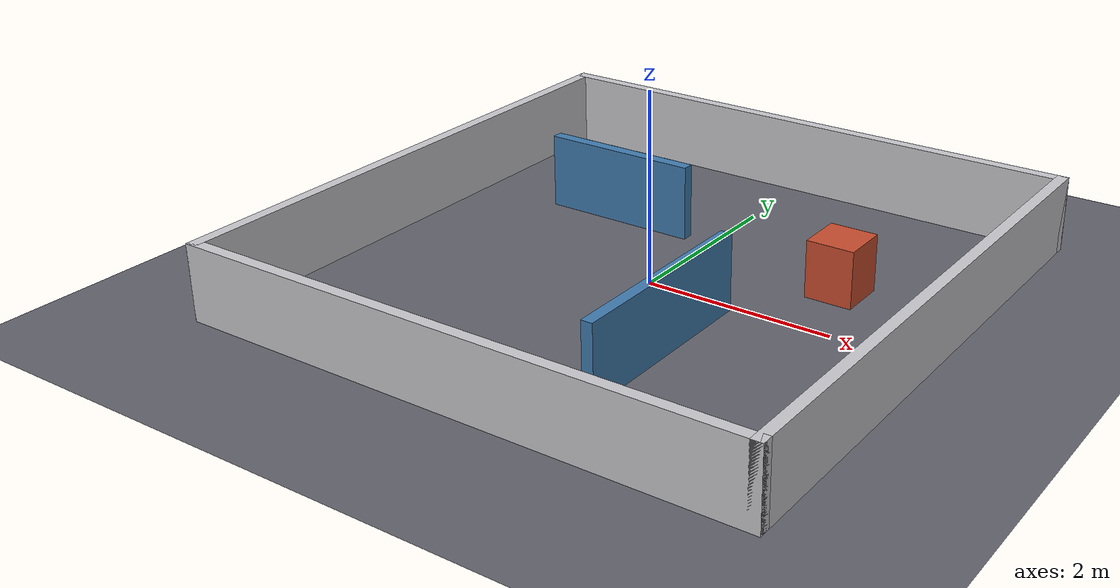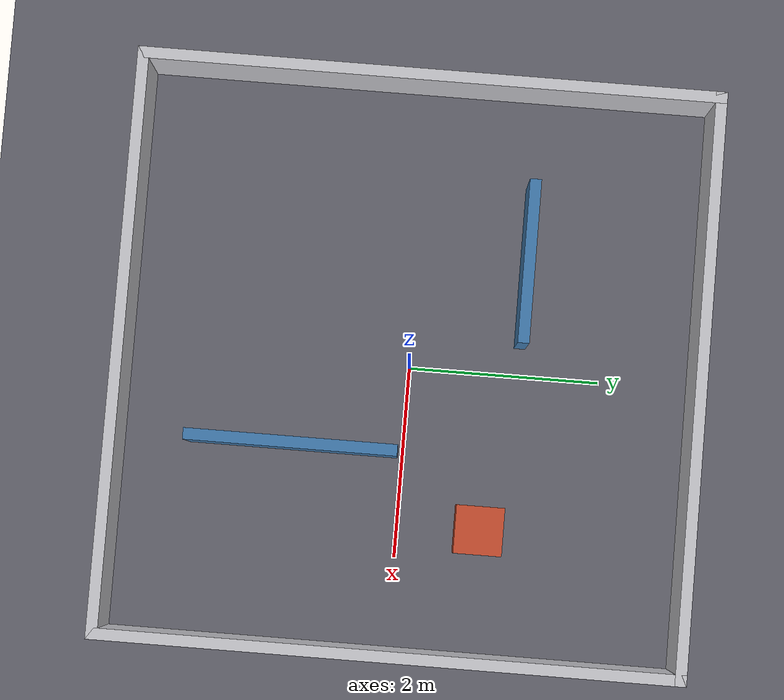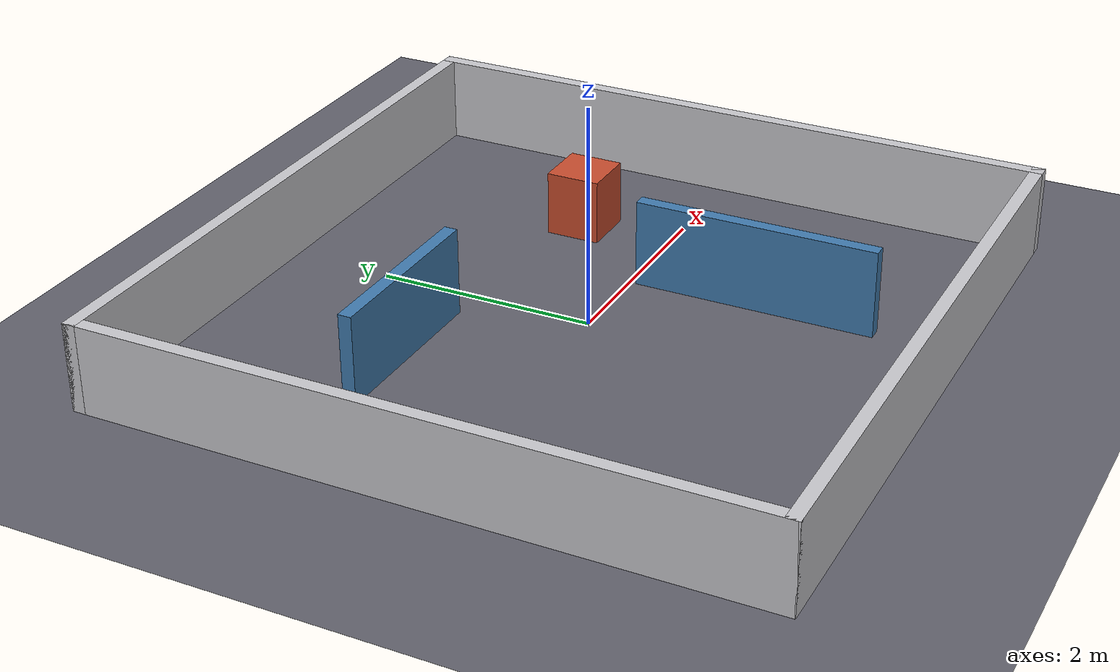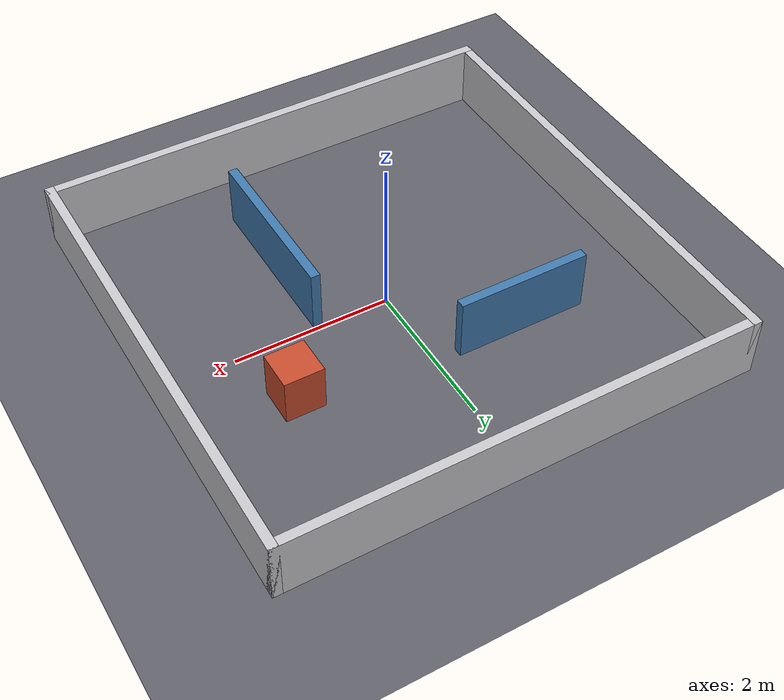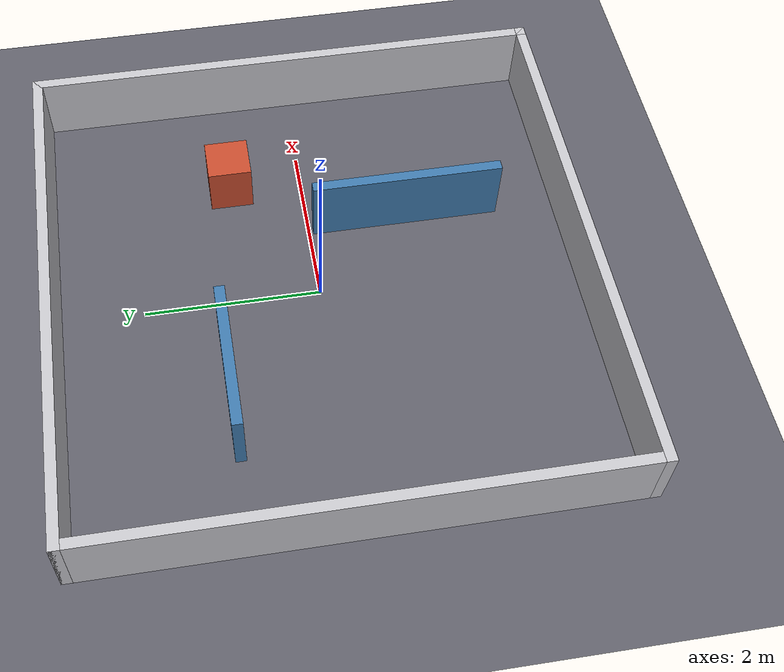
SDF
<?xml version="1.0" ?>
<sdf version="1.9">
  <world name="arena">

    <physics name="default_physics" type="ignored">
      <max_step_size>0.001</max_step_size>
      <real_time_factor>1.0</real_time_factor>
    </physics>

    <plugin filename="gz-sim-physics-system"
            name="gz::sim::systems::Physics"/>
    <plugin filename="gz-sim-user-commands-system"
            name="gz::sim::systems::UserCommands"/>
    <plugin filename="gz-sim-scene-broadcaster-system"
            name="gz::sim::systems::SceneBroadcaster"/>
    <plugin filename="gz-sim-sensors-system"
            name="gz::sim::systems::Sensors">
      <render_engine>ogre2</render_engine>
    </plugin>

    <light type="directional" name="sun">
      <pose>0 0 10 0 0 0</pose>
      <cast_shadows>true</cast_shadows>
      <diffuse>0.8 0.8 0.8 1</diffuse>
      <direction>-0.5 0.1 -0.9</direction>
    </light>

    <model name="ground_plane">
      <static>true</static>
      <link name="link">
        <collision name="collision">
          <geometry>
            <plane>
              <normal>0 0 1</normal>
              <size>20 20</size>
            </plane>
          </geometry>
        </collision>
        <visual name="visual">
          <geometry>
            <plane>
              <normal>0 0 1</normal>
              <size>20 20</size>
            </plane>
          </geometry>
          <material>
            <ambient>0.22 0.22 0.24 1</ambient>
            <diffuse>0.38 0.38 0.42 1</diffuse>
          </material>
        </visual>
      </link>
    </model>

    <!-- Outer room: 6 m by 6 m -->
    <model name="north_wall">
      <static>true</static>
      <pose>0 3 0.4 0 0 0</pose>
      <link name="link">
        <collision name="collision"><geometry><box><size>6.12 0.12 0.80</size></box></geometry></collision>
        <visual name="visual"><geometry><box><size>6.12 0.12 0.80</size></box></geometry><material><diffuse>0.78 0.78 0.80 1</diffuse></material></visual>
      </link>
    </model>

    <model name="south_wall">
      <static>true</static>
      <pose>0 -3 0.4 0 0 0</pose>
      <link name="link">
        <collision name="collision"><geometry><box><size>6.12 0.12 0.80</size></box></geometry></collision>
        <visual name="visual"><geometry><box><size>6.12 0.12 0.80</size></box></geometry><material><diffuse>0.78 0.78 0.80 1</diffuse></material></visual>
      </link>
    </model>

    <model name="east_wall">
      <static>true</static>
      <pose>3 0 0.4 0 0 0</pose>
      <link name="link">
        <collision name="collision"><geometry><box><size>0.12 6.12 0.80</size></box></geometry></collision>
        <visual name="visual"><geometry><box><size>0.12 6.12 0.80</size></box></geometry><material><diffuse>0.78 0.78 0.80 1</diffuse></material></visual>
      </link>
    </model>

    <model name="west_wall">
      <static>true</static>
      <pose>-3 0 0.4 0 0 0</pose>
      <link name="link">
        <collision name="collision"><geometry><box><size>0.12 6.12 0.80</size></box></geometry></collision>
        <visual name="visual"><geometry><box><size>0.12 6.12 0.80</size></box></geometry><material><diffuse>0.78 0.78 0.80 1</diffuse></material></visual>
      </link>
    </model>

    <!-- Interior structure for turning and obstacle detection -->
    <model name="vertical_partition">
      <static>true</static>
      <pose>0.9 -1.15 0.4 0 0 0</pose>
      <link name="link">
        <collision name="collision"><geometry><box><size>0.12 2.20 0.80</size></box></geometry></collision>
        <visual name="visual"><geometry><box><size>0.12 2.20 0.80</size></box></geometry><material><diffuse>0.25 0.48 0.68 1</diffuse></material></visual>
      </link>
    </model>

    <model name="horizontal_partition">
      <static>true</static>
      <pose>-1.15 1.15 0.4 0 0 0</pose>
      <link name="link">
        <collision name="collision"><geometry><box><size>1.70 0.12 0.80</size></box></geometry></collision>
        <visual name="visual"><geometry><box><size>1.70 0.12 0.80</size></box></geometry><material><diffuse>0.25 0.48 0.68 1</diffuse></material></visual>
      </link>
    </model>

    <model name="centre_block">
      <static>true</static>
      <pose>1.65 0.85 0.30 0 0 0</pose>
      <link name="link">
        <collision name="collision"><geometry><box><size>0.50 0.50 0.60</size></box></geometry></collision>
        <visual name="visual"><geometry><box><size>0.50 0.50 0.60</size></box></geometry><material><diffuse>0.78 0.30 0.18 1</diffuse></material></visual>
      </link>
    </model>

  </world>
</sdf>
